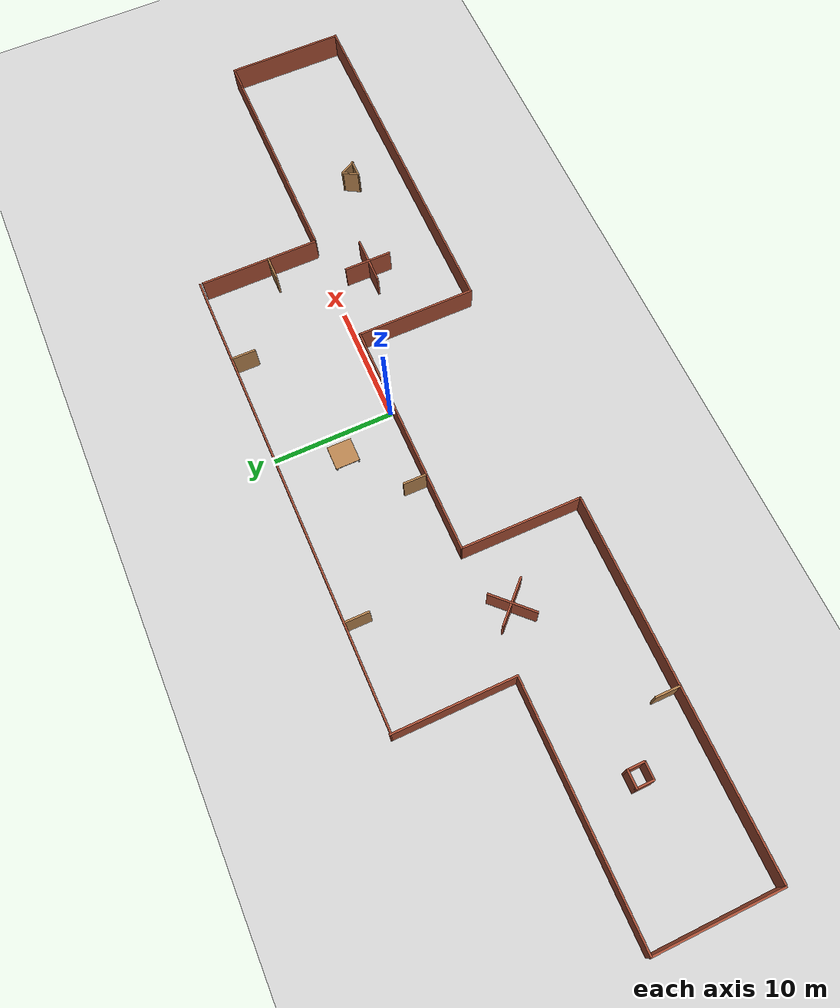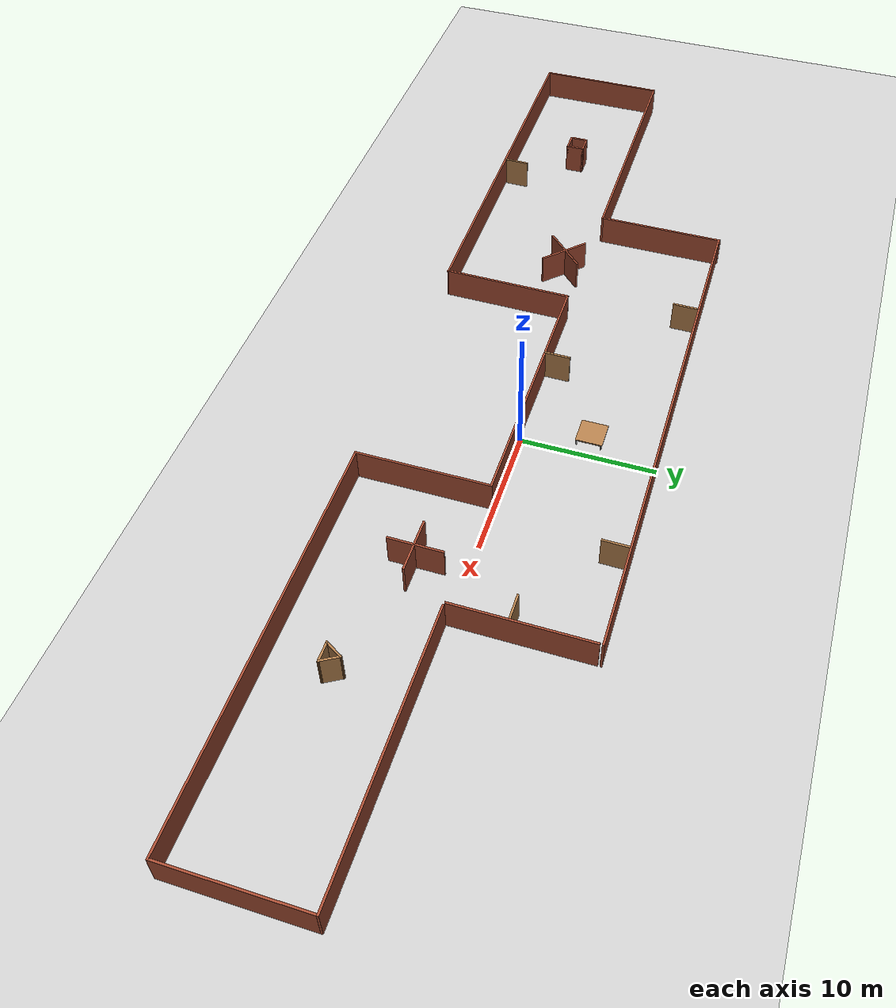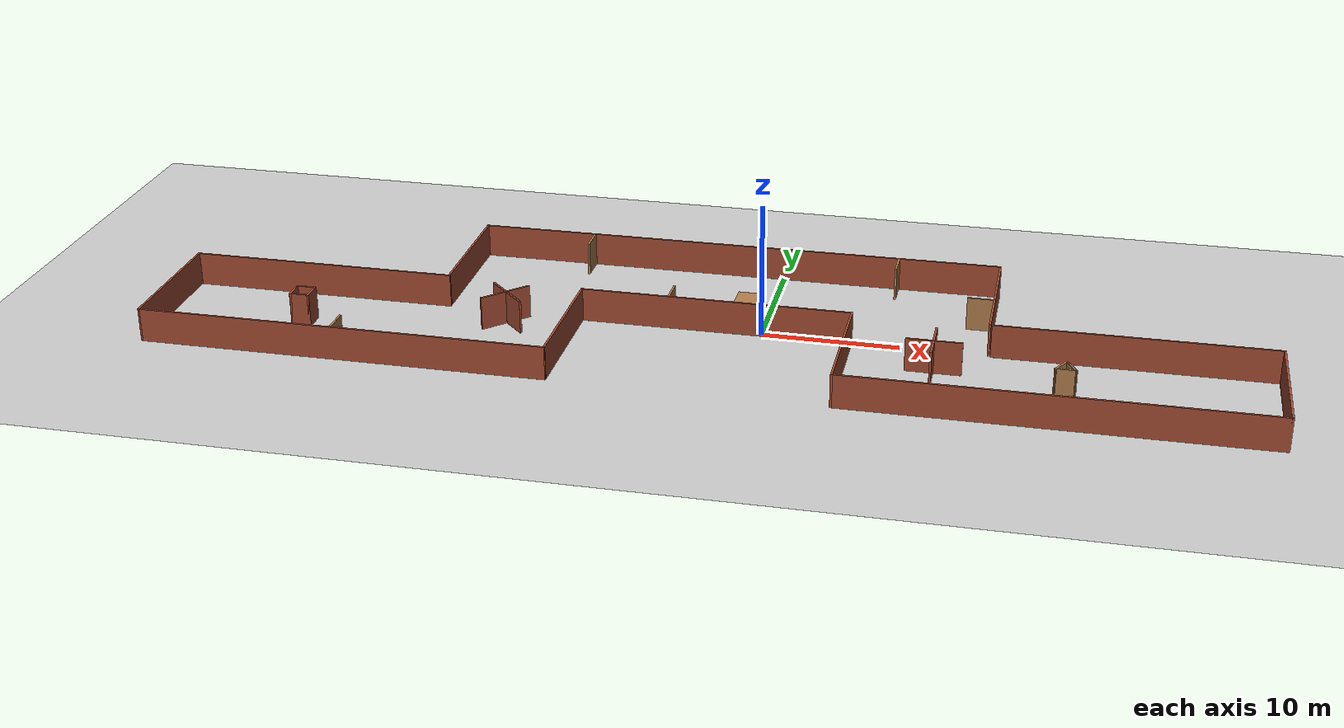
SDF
<sdf version="1.7">
 <world name="default">
  <light name="sun" type="directional">
   <pose>0 0 10 0 -0 0</pose>
   <diffuse>0.8 0.8 0.8 1</diffuse>
   <specular>0.2 0.2 0.2 1</specular>
   <attenuation>
    <range>1000</range>
    <constant>0.9</constant>
    <linear>0.01</linear>
    <quadratic>0.001</quadratic>
   </attenuation>
   <direction>-0.5 0.1 -0.9</direction>
   <spot><inner_angle>0</inner_angle><outer_angle>0</outer_angle><falloff>0</falloff></spot>
  </light>
  <model name="ground_plane">
   <static>1</static>
   <link name="link">
    <collision name="collision">
     <geometry><plane><normal>0 0 1</normal><size>100 100</size></plane></geometry>
     <surface>
      <contact><collide_bitmask>65535</collide_bitmask></contact>
      <friction><ode><mu>100</mu><mu2>50</mu2></ode></friction>
     </surface>
    </collision>
    <visual name="visual">
     <cast_shadows>0</cast_shadows>
     <geometry><plane><normal>0 0 1</normal><size>100 100</size></plane></geometry>
     <material>
      <script><uri>file://media/materials/scripts/gazebo.material</uri><name>Gazebo/Grey</name></script>
     </material>
    </visual>
   </link>
  </model>
  <gravity>0 0 -9.8</gravity>
  <magnetic_field>6e-06 2.3e-05 -4.2e-05</magnetic_field>
  <atmosphere type="adiabatic"/>
  <physics type="ode">
   <max_step_size>0.001</max_step_size>
   <real_time_factor>1</real_time_factor>
   <real_time_update_rate>1000</real_time_update_rate>
  </physics>
  <scene><ambient>0.4 0.4 0.4 1</ambient><background>0.7 0.7 0.7 1</background><shadows>1</shadows></scene>
  <spherical_coordinates>
   <surface_model>EARTH_WGS84</surface_model>
   <latitude_deg>0</latitude_deg>
   <longitude_deg>0</longitude_deg>
   <elevation>0</elevation>
   <heading_deg>0</heading_deg>
  </spherical_coordinates>
  <model name="long_room_1">
   <link name="Wall_40">
    <pose>-24.8182 -16.4485 0 0 -0 0</pose>
    <inertial>
     <mass>1</mass>
     <inertia><ixx>1</ixx><ixy>0</ixy><ixz>0</ixz><iyy>1</iyy><iyz>0</iyz><izz>1</izz></inertia>
    </inertial>
    <visual name="Wall_40_Visual">
     <pose>0 0 1.25 0 -0 0</pose>
     <geometry><box><size>30.014 0.15 2.5</size></box></geometry>
     <material>
      <script><uri>file://media/materials/scripts/gazebo.material</uri><name>Gazebo/Bricks</name></script>
      <ambient>1 1 1 1</ambient>
      <shader type="pixel"><normal_map>__default__</normal_map></shader>
      <diffuse>1 1 1 1</diffuse>
      <specular>0.2 0.2 0.2 1</specular>
      <emissive>0 0 0 1</emissive>
     </material>
     <meta><layer>0</layer></meta>
    </visual>
    <collision name="Wall_40_Collision">
     <pose>0 0 1.25 0 -0 0</pose>
     <geometry><box><size>30.014 0.15 2.5</size></box></geometry>
     <surface>
      <friction>
       <ode><mu>1</mu><mu2>1</mu2><fdir1>0 0 0</fdir1><slip1>0</slip1><slip2>0</slip2></ode>
       <torsional>
        <coefficient>1</coefficient>
        <patch_radius>0</patch_radius>
        <surface_radius>0</surface_radius>
        <use_patch_radius>1</use_patch_radius>
        <ode><slip>0</slip></ode>
       </torsional>
      </friction>
      <bounce><restitution_coefficient>0</restitution_coefficient><threshold>1e+06</threshold></bounce>
      <contact>
       <collide_without_contact>0</collide_without_contact>
       <collide_without_contact_bitmask>1</collide_without_contact_bitmask>
       <collide_bitmask>1</collide_bitmask>
       <ode>
        <soft_cfm>0</soft_cfm>
        <soft_erp>0.2</soft_erp>
        <kp>1e+13</kp>
        <kd>1</kd>
        <max_vel>0.01</max_vel>
        <min_depth>0</min_depth>
       </ode>
       <bullet>
        <split_impulse>1</split_impulse>
        <split_impulse_penetration_threshold>-0.01</split_impulse_penetration_threshold>
        <soft_cfm>0</soft_cfm>
        <soft_erp>0.2</soft_erp>
        <kp>1e+13</kp>
        <kd>1</kd>
       </bullet>
      </contact>
     </surface>
    </collision>
   </link>
   <link name="Wall_43">
    <pose>-9.84589 -11.5235 0 0 -0 1.56262</pose>
    <inertial>
     <mass>1</mass>
     <inertia><ixx>1</ixx><ixy>0</ixy><ixz>0</ixz><iyy>1</iyy><iyz>0</iyz><izz>1</izz></inertia>
    </inertial>
    <visual name="Wall_43_Visual">
     <pose>0 0 1.25 0 -0 0</pose>
     <geometry><box><size>10.0003 0.15 2.5</size></box></geometry>
     <material>
      <script><uri>file://media/materials/scripts/gazebo.material</uri><name>Gazebo/Bricks</name></script>
      <ambient>1 1 1 1</ambient>
      <shader type="pixel"><normal_map>__default__</normal_map></shader>
      <diffuse>1 1 1 1</diffuse>
      <specular>0.2 0.2 0.2 1</specular>
      <emissive>0 0 0 1</emissive>
     </material>
     <meta><layer>0</layer></meta>
    </visual>
    <collision name="Wall_43_Collision">
     <pose>0 0 1.25 0 -0 0</pose>
     <geometry><box><size>10.0003 0.15 2.5</size></box></geometry>
     <surface>
      <friction>
       <ode><mu>1</mu><mu2>1</mu2><fdir1>0 0 0</fdir1><slip1>0</slip1><slip2>0</slip2></ode>
       <torsional>
        <coefficient>1</coefficient>
        <patch_radius>0</patch_radius>
        <surface_radius>0</surface_radius>
        <use_patch_radius>1</use_patch_radius>
        <ode><slip>0</slip></ode>
       </torsional>
      </friction>
      <bounce><restitution_coefficient>0</restitution_coefficient><threshold>1e+06</threshold></bounce>
      <contact>
       <collide_without_contact>0</collide_without_contact>
       <collide_without_contact_bitmask>1</collide_without_contact_bitmask>
       <collide_bitmask>1</collide_bitmask>
       <ode>
        <soft_cfm>0</soft_cfm>
        <soft_erp>0.2</soft_erp>
        <kp>1e+13</kp>
        <kd>1</kd>
        <max_vel>0.01</max_vel>
        <min_depth>0</min_depth>
       </ode>
       <bullet>
        <split_impulse>1</split_impulse>
        <split_impulse_penetration_threshold>-0.01</split_impulse_penetration_threshold>
        <soft_cfm>0</soft_cfm>
        <soft_erp>0.2</soft_erp>
        <kp>1e+13</kp>
        <kd>1</kd>
       </bullet>
      </contact>
     </surface>
    </collision>
   </link>
   <link name="Wall_45">
    <pose>0.119401 -6.59846 0 0 -0 0</pose>
    <inertial>
     <mass>1</mass>
     <inertia><ixx>1</ixx><ixy>0</ixy><ixz>0</ixz><iyy>1</iyy><iyz>0</iyz><izz>1</izz></inertia>
    </inertial>
    <visual name="Wall_45_Visual">
     <pose>0 0 1.25 0 -0 0</pose>
     <geometry><box><size>20 0.15 2.5</size></box></geometry>
     <material>
      <script><uri>file://media/materials/scripts/gazebo.material</uri><name>Gazebo/Bricks</name></script>
      <ambient>1 1 1 1</ambient>
      <shader type="pixel"><normal_map>__default__</normal_map></shader>
      <diffuse>1 1 1 1</diffuse>
      <specular>0.2 0.2 0.2 1</specular>
      <emissive>0 0 0 1</emissive>
     </material>
     <meta><layer>0</layer></meta>
    </visual>
    <collision name="Wall_45_Collision">
     <pose>0 0 1.25 0 -0 0</pose>
     <geometry><box><size>20 0.15 2.5</size></box></geometry>
     <surface>
      <friction>
       <ode><mu>1</mu><mu2>1</mu2><fdir1>0 0 0</fdir1><slip1>0</slip1><slip2>0</slip2></ode>
       <torsional>
        <coefficient>1</coefficient>
        <patch_radius>0</patch_radius>
        <surface_radius>0</surface_radius>
        <use_patch_radius>1</use_patch_radius>
        <ode><slip>0</slip></ode>
       </torsional>
      </friction>
      <bounce><restitution_coefficient>0</restitution_coefficient><threshold>1e+06</threshold></bounce>
      <contact>
       <collide_without_contact>0</collide_without_contact>
       <collide_without_contact_bitmask>1</collide_without_contact_bitmask>
       <collide_bitmask>1</collide_bitmask>
       <ode>
        <soft_cfm>0</soft_cfm>
        <soft_erp>0.2</soft_erp>
        <kp>1e+13</kp>
        <kd>1</kd>
        <max_vel>0.01</max_vel>
        <min_depth>0</min_depth>
       </ode>
       <bullet>
        <split_impulse>1</split_impulse>
        <split_impulse_penetration_threshold>-0.01</split_impulse_penetration_threshold>
        <soft_cfm>0</soft_cfm>
        <soft_erp>0.2</soft_erp>
        <kp>1e+13</kp>
        <kd>1</kd>
       </bullet>
      </contact>
     </surface>
    </collision>
   </link>
   <link name="Wall_47">
    <pose>10.0444 -11.5235 0 0 0 -1.5708</pose>
    <inertial>
     <mass>1</mass>
     <inertia><ixx>1</ixx><ixy>0</ixy><ixz>0</ixz><iyy>1</iyy><iyz>0</iyz><izz>1</izz></inertia>
    </inertial>
    <visual name="Wall_47_Visual">
     <pose>0 0 1.25 0 -0 0</pose>
     <geometry><box><size>10 0.15 2.5</size></box></geometry>
     <material>
      <script><uri>file://media/materials/scripts/gazebo.material</uri><name>Gazebo/Bricks</name></script>
      <ambient>1 1 1 1</ambient>
      <shader type="pixel"><normal_map>__default__</normal_map></shader>
      <diffuse>1 1 1 1</diffuse>
      <specular>0.2 0.2 0.2 1</specular>
      <emissive>0 0 0 1</emissive>
     </material>
     <meta><layer>0</layer></meta>
    </visual>
    <collision name="Wall_47_Collision">
     <pose>0 0 1.25 0 -0 0</pose>
     <geometry><box><size>10 0.15 2.5</size></box></geometry>
     <surface>
      <friction>
       <ode><mu>1</mu><mu2>1</mu2><fdir1>0 0 0</fdir1><slip1>0</slip1><slip2>0</slip2></ode>
       <torsional>
        <coefficient>1</coefficient>
        <patch_radius>0</patch_radius>
        <surface_radius>0</surface_radius>
        <use_patch_radius>1</use_patch_radius>
        <ode><slip>0</slip></ode>
       </torsional>
      </friction>
      <bounce><restitution_coefficient>0</restitution_coefficient><threshold>1e+06</threshold></bounce>
      <contact>
       <collide_without_contact>0</collide_without_contact>
       <collide_without_contact_bitmask>1</collide_without_contact_bitmask>
       <collide_bitmask>1</collide_bitmask>
       <ode>
        <soft_cfm>0</soft_cfm>
        <soft_erp>0.2</soft_erp>
        <kp>1e+13</kp>
        <kd>1</kd>
        <max_vel>0.01</max_vel>
        <min_depth>0</min_depth>
       </ode>
       <bullet>
        <split_impulse>1</split_impulse>
        <split_impulse_penetration_threshold>-0.01</split_impulse_penetration_threshold>
        <soft_cfm>0</soft_cfm>
        <soft_erp>0.2</soft_erp>
        <kp>1e+13</kp>
        <kd>1</kd>
       </bullet>
      </contact>
     </surface>
    </collision>
   </link>
   <link name="Wall_49">
    <pose>24.9694 -16.4485 0 0 -0 0</pose>
    <inertial>
     <mass>1</mass>
     <inertia><ixx>1</ixx><ixy>0</ixy><ixz>0</ixz><iyy>1</iyy><iyz>0</iyz><izz>1</izz></inertia>
    </inertial>
    <visual name="Wall_49_Visual">
     <pose>0 0 1.25 0 -0 0</pose>
     <geometry><box><size>30 0.15 2.5</size></box></geometry>
     <material>
      <script><uri>file://media/materials/scripts/gazebo.material</uri><name>Gazebo/Bricks</name></script>
      <ambient>1 1 1 1</ambient>
      <shader type="pixel"><normal_map>__default__</normal_map></shader>
      <diffuse>1 1 1 1</diffuse>
      <specular>0.2 0.2 0.2 1</specular>
      <emissive>0 0 0 1</emissive>
     </material>
     <meta><layer>0</layer></meta>
    </visual>
    <collision name="Wall_49_Collision">
     <pose>0 0 1.25 0 -0 0</pose>
     <geometry><box><size>30 0.15 2.5</size></box></geometry>
     <surface>
      <friction>
       <ode><mu>1</mu><mu2>1</mu2><fdir1>0 0 0</fdir1><slip1>0</slip1><slip2>0</slip2></ode>
       <torsional>
        <coefficient>1</coefficient>
        <patch_radius>0</patch_radius>
        <surface_radius>0</surface_radius>
        <use_patch_radius>1</use_patch_radius>
        <ode><slip>0</slip></ode>
       </torsional>
      </friction>
      <bounce><restitution_coefficient>0</restitution_coefficient><threshold>1e+06</threshold></bounce>
      <contact>
       <collide_without_contact>0</collide_without_contact>
       <collide_without_contact_bitmask>1</collide_without_contact_bitmask>
       <collide_bitmask>1</collide_bitmask>
       <ode>
        <soft_cfm>0</soft_cfm>
        <soft_erp>0.2</soft_erp>
        <kp>1e+13</kp>
        <kd>1</kd>
        <max_vel>0.01</max_vel>
        <min_depth>0</min_depth>
       </ode>
       <bullet>
        <split_impulse>1</split_impulse>
        <split_impulse_penetration_threshold>-0.01</split_impulse_penetration_threshold>
        <soft_cfm>0</soft_cfm>
        <soft_erp>0.2</soft_erp>
        <kp>1e+13</kp>
        <kd>1</kd>
       </bullet>
      </contact>
     </surface>
    </collision>
   </link>
   <link name="Wall_51">
    <pose>39.8944 -11.5235 0 0 -0 1.5708</pose>
    <inertial>
     <mass>1</mass>
     <inertia><ixx>1</ixx><ixy>0</ixy><ixz>0</ixz><iyy>1</iyy><iyz>0</iyz><izz>1</izz></inertia>
    </inertial>
    <visual name="Wall_51_Visual">
     <pose>0 0 1.25 0 -0 0</pose>
     <geometry><box><size>10 0.15 2.5</size></box></geometry>
     <material>
      <script><uri>file://media/materials/scripts/gazebo.material</uri><name>Gazebo/Bricks</name></script>
      <ambient>1 1 1 1</ambient>
      <shader type="pixel"><normal_map>__default__</normal_map></shader>
      <diffuse>1 1 1 1</diffuse>
      <specular>0.2 0.2 0.2 1</specular>
      <emissive>0 0 0 1</emissive>
     </material>
     <meta><layer>0</layer></meta>
    </visual>
    <collision name="Wall_51_Collision">
     <pose>0 0 1.25 0 -0 0</pose>
     <geometry><box><size>10 0.15 2.5</size></box></geometry>
     <surface>
      <friction>
       <ode><mu>1</mu><mu2>1</mu2><fdir1>0 0 0</fdir1><slip1>0</slip1><slip2>0</slip2></ode>
       <torsional>
        <coefficient>1</coefficient>
        <patch_radius>0</patch_radius>
        <surface_radius>0</surface_radius>
        <use_patch_radius>1</use_patch_radius>
        <ode><slip>0</slip></ode>
       </torsional>
      </friction>
      <bounce><restitution_coefficient>0</restitution_coefficient><threshold>1e+06</threshold></bounce>
      <contact>
       <collide_without_contact>0</collide_without_contact>
       <collide_without_contact_bitmask>1</collide_without_contact_bitmask>
       <collide_bitmask>1</collide_bitmask>
       <ode>
        <soft_cfm>0</soft_cfm>
        <soft_erp>0.2</soft_erp>
        <kp>1e+13</kp>
        <kd>1</kd>
        <max_vel>0.01</max_vel>
        <min_depth>0</min_depth>
       </ode>
       <bullet>
        <split_impulse>1</split_impulse>
        <split_impulse_penetration_threshold>-0.01</split_impulse_penetration_threshold>
        <soft_cfm>0</soft_cfm>
        <soft_erp>0.2</soft_erp>
        <kp>1e+13</kp>
        <kd>1</kd>
       </bullet>
      </contact>
     </surface>
    </collision>
   </link>
   <link name="Wall_53">
    <pose>29.9694 -6.59846 0 0 -0 3.14159</pose>
    <inertial>
     <mass>1</mass>
     <inertia><ixx>1</ixx><ixy>0</ixy><ixz>0</ixz><iyy>1</iyy><iyz>0</iyz><izz>1</izz></inertia>
    </inertial>
    <visual name="Wall_53_Visual">
     <pose>0 0 1.25 0 -0 0</pose>
     <geometry><box><size>20 0.15 2.5</size></box></geometry>
     <material>
      <script><uri>file://media/materials/scripts/gazebo.material</uri><name>Gazebo/Bricks</name></script>
      <ambient>1 1 1 1</ambient>
      <shader type="pixel"><normal_map>__default__</normal_map></shader>
      <diffuse>1 1 1 1</diffuse>
      <specular>0.2 0.2 0.2 1</specular>
      <emissive>0 0 0 1</emissive>
     </material>
     <meta><layer>0</layer></meta>
    </visual>
    <collision name="Wall_53_Collision">
     <pose>0 0 1.25 0 -0 0</pose>
     <geometry><box><size>20 0.15 2.5</size></box></geometry>
     <surface>
      <friction>
       <ode><mu>1</mu><mu2>1</mu2><fdir1>0 0 0</fdir1><slip1>0</slip1><slip2>0</slip2></ode>
       <torsional>
        <coefficient>1</coefficient>
        <patch_radius>0</patch_radius>
        <surface_radius>0</surface_radius>
        <use_patch_radius>1</use_patch_radius>
        <ode><slip>0</slip></ode>
       </torsional>
      </friction>
      <bounce><restitution_coefficient>0</restitution_coefficient><threshold>1e+06</threshold></bounce>
      <contact>
       <collide_without_contact>0</collide_without_contact>
       <collide_without_contact_bitmask>1</collide_without_contact_bitmask>
       <collide_bitmask>1</collide_bitmask>
       <ode>
        <soft_cfm>0</soft_cfm>
        <soft_erp>0.2</soft_erp>
        <kp>1e+13</kp>
        <kd>1</kd>
        <max_vel>0.01</max_vel>
        <min_depth>0</min_depth>
       </ode>
       <bullet>
        <split_impulse>1</split_impulse>
        <split_impulse_penetration_threshold>-0.01</split_impulse_penetration_threshold>
        <soft_cfm>0</soft_cfm>
        <soft_erp>0.2</soft_erp>
        <kp>1e+13</kp>
        <kd>1</kd>
       </bullet>
      </contact>
     </surface>
    </collision>
   </link>
   <link name="Wall_56">
    <pose>19.8148 -1.56674 0 0 -0 1.5708</pose>
    <inertial>
     <mass>1</mass>
     <inertia><ixx>1</ixx><ixy>0</ixy><ixz>0</ixz><iyy>1</iyy><iyz>0</iyz><izz>1</izz></inertia>
    </inertial>
    <visual name="Wall_56_Visual">
     <pose>0 0 1.25 0 -0 0</pose>
     <geometry><box><size>10 0.15 2.5</size></box></geometry>
     <material>
      <script><uri>file://media/materials/scripts/gazebo.material</uri><name>Gazebo/Bricks</name></script>
      <ambient>1 1 1 1</ambient>
      <shader type="pixel"><normal_map>__default__</normal_map></shader>
      <diffuse>1 1 1 1</diffuse>
      <specular>0.2 0.2 0.2 1</specular>
      <emissive>0 0 0 1</emissive>
     </material>
     <meta><layer>0</layer></meta>
    </visual>
    <collision name="Wall_56_Collision">
     <pose>0 0 1.25 0 -0 0</pose>
     <geometry><box><size>10 0.15 2.5</size></box></geometry>
     <surface>
      <friction>
       <ode><mu>1</mu><mu2>1</mu2><fdir1>0 0 0</fdir1><slip1>0</slip1><slip2>0</slip2></ode>
       <torsional>
        <coefficient>1</coefficient>
        <patch_radius>0</patch_radius>
        <surface_radius>0</surface_radius>
        <use_patch_radius>1</use_patch_radius>
        <ode><slip>0</slip></ode>
       </torsional>
      </friction>
      <bounce><restitution_coefficient>0</restitution_coefficient><threshold>1e+06</threshold></bounce>
      <contact>
       <collide_without_contact>0</collide_without_contact>
       <collide_without_contact_bitmask>1</collide_without_contact_bitmask>
       <collide_bitmask>1</collide_bitmask>
       <ode>
        <soft_cfm>0</soft_cfm>
        <soft_erp>0.2</soft_erp>
        <kp>1e+13</kp>
        <kd>1</kd>
        <max_vel>0.01</max_vel>
        <min_depth>0</min_depth>
       </ode>
       <bullet>
        <split_impulse>1</split_impulse>
        <split_impulse_penetration_threshold>-0.01</split_impulse_penetration_threshold>
        <soft_cfm>0</soft_cfm>
        <soft_erp>0.2</soft_erp>
        <kp>1e+13</kp>
        <kd>1</kd>
       </bullet>
      </contact>
     </surface>
    </collision>
   </link>
   <link name="Wall_58">
    <pose>-0.1194 3.54042 0 0 0 -3.1369</pose>
    <inertial>
     <mass>1</mass>
     <inertia><ixx>1</ixx><ixy>0</ixy><ixz>0</ixz><iyy>1</iyy><iyz>0</iyz><izz>1</izz></inertia>
    </inertial>
    <visual name="Wall_58_Visual">
     <pose>0 0 1.25 0 -0 0</pose>
     <geometry><box><size>40 0.15 2.5</size></box></geometry>
     <material>
      <script><uri>file://media/materials/scripts/gazebo.material</uri><name>Gazebo/Bricks</name></script>
      <ambient>1 1 1 1</ambient>
      <shader type="pixel"><normal_map>__default__</normal_map></shader>
      <diffuse>1 1 1 1</diffuse>
      <specular>0.2 0.2 0.2 1</specular>
      <emissive>0 0 0 1</emissive>
     </material>
     <meta><layer>0</layer></meta>
    </visual>
    <collision name="Wall_58_Collision">
     <pose>0 0 1.25 0 -0 0</pose>
     <geometry><box><size>40 0.15 2.5</size></box></geometry>
     <surface>
      <friction>
       <ode><mu>1</mu><mu2>1</mu2><fdir1>0 0 0</fdir1><slip1>0</slip1><slip2>0</slip2></ode>
       <torsional>
        <coefficient>1</coefficient>
        <patch_radius>0</patch_radius>
        <surface_radius>0</surface_radius>
        <use_patch_radius>1</use_patch_radius>
        <ode><slip>0</slip></ode>
       </torsional>
      </friction>
      <bounce><restitution_coefficient>0</restitution_coefficient><threshold>1e+06</threshold></bounce>
      <contact>
       <collide_without_contact>0</collide_without_contact>
       <collide_without_contact_bitmask>1</collide_without_contact_bitmask>
       <collide_bitmask>1</collide_bitmask>
       <ode>
        <soft_cfm>0</soft_cfm>
        <soft_erp>0.2</soft_erp>
        <kp>1e+13</kp>
        <kd>1</kd>
        <max_vel>0.01</max_vel>
        <min_depth>0</min_depth>
       </ode>
       <bullet>
        <split_impulse>1</split_impulse>
        <split_impulse_penetration_threshold>-0.01</split_impulse_penetration_threshold>
        <soft_cfm>0</soft_cfm>
        <soft_erp>0.2</soft_erp>
        <kp>1e+13</kp>
        <kd>1</kd>
       </bullet>
      </contact>
     </surface>
    </collision>
   </link>
   <link name="Wall_61">
    <pose>-20.0444 -1.38458 0 0 0 -1.5708</pose>
    <inertial>
     <mass>1</mass>
     <inertia><ixx>1</ixx><ixy>0</ixy><ixz>0</ixz><iyy>1</iyy><iyz>0</iyz><izz>1</izz></inertia>
    </inertial>
    <visual name="Wall_61_Visual">
     <pose>0 0 1.25 0 -0 0</pose>
     <geometry><box><size>10 0.15 2.5</size></box></geometry>
     <material>
      <script><uri>file://media/materials/scripts/gazebo.material</uri><name>Gazebo/Bricks</name></script>
      <ambient>1 1 1 1</ambient>
      <shader type="pixel"><normal_map>__default__</normal_map></shader>
      <diffuse>1 1 1 1</diffuse>
      <specular>0.2 0.2 0.2 1</specular>
      <emissive>0 0 0 1</emissive>
     </material>
     <meta><layer>0</layer></meta>
    </visual>
    <collision name="Wall_61_Collision">
     <pose>0 0 1.25 0 -0 0</pose>
     <geometry><box><size>10 0.15 2.5</size></box></geometry>
     <surface>
      <friction>
       <ode><mu>1</mu><mu2>1</mu2><fdir1>0 0 0</fdir1><slip1>0</slip1><slip2>0</slip2></ode>
       <torsional>
        <coefficient>1</coefficient>
        <patch_radius>0</patch_radius>
        <surface_radius>0</surface_radius>
        <use_patch_radius>1</use_patch_radius>
        <ode><slip>0</slip></ode>
       </torsional>
      </friction>
      <bounce><restitution_coefficient>0</restitution_coefficient><threshold>1e+06</threshold></bounce>
      <contact>
       <collide_without_contact>0</collide_without_contact>
       <collide_without_contact_bitmask>1</collide_without_contact_bitmask>
       <collide_bitmask>1</collide_bitmask>
       <ode>
        <soft_cfm>0</soft_cfm>
        <soft_erp>0.2</soft_erp>
        <kp>1e+13</kp>
        <kd>1</kd>
        <max_vel>0.01</max_vel>
        <min_depth>0</min_depth>
       </ode>
       <bullet>
        <split_impulse>1</split_impulse>
        <split_impulse_penetration_threshold>-0.01</split_impulse_penetration_threshold>
        <soft_cfm>0</soft_cfm>
        <soft_erp>0.2</soft_erp>
        <kp>1e+13</kp>
        <kd>1</kd>
       </bullet>
      </contact>
     </surface>
    </collision>
   </link>
   <link name="Wall_63">
    <pose>-29.9694 -6.30958 0 0 -0 3.14159</pose>
    <inertial>
     <mass>1</mass>
     <inertia><ixx>1</ixx><ixy>0</ixy><ixz>0</ixz><iyy>1</iyy><iyz>0</iyz><izz>1</izz></inertia>
    </inertial>
    <visual name="Wall_63_Visual">
     <pose>0 0 1.25 0 -0 0</pose>
     <geometry><box><size>20 0.15 2.5</size></box></geometry>
     <material>
      <script><uri>file://media/materials/scripts/gazebo.material</uri><name>Gazebo/Bricks</name></script>
      <ambient>1 1 1 1</ambient>
      <shader type="pixel"><normal_map>__default__</normal_map></shader>
      <diffuse>1 1 1 1</diffuse>
      <specular>0.2 0.2 0.2 1</specular>
      <emissive>0 0 0 1</emissive>
     </material>
     <meta><layer>0</layer></meta>
    </visual>
    <collision name="Wall_63_Collision">
     <pose>0 0 1.25 0 -0 0</pose>
     <geometry><box><size>20 0.15 2.5</size></box></geometry>
     <surface>
      <friction>
       <ode><mu>1</mu><mu2>1</mu2><fdir1>0 0 0</fdir1><slip1>0</slip1><slip2>0</slip2></ode>
       <torsional>
        <coefficient>1</coefficient>
        <patch_radius>0</patch_radius>
        <surface_radius>0</surface_radius>
        <use_patch_radius>1</use_patch_radius>
        <ode><slip>0</slip></ode>
       </torsional>
      </friction>
      <bounce><restitution_coefficient>0</restitution_coefficient><threshold>1e+06</threshold></bounce>
      <contact>
       <collide_without_contact>0</collide_without_contact>
       <collide_without_contact_bitmask>1</collide_without_contact_bitmask>
       <collide_bitmask>1</collide_bitmask>
       <ode>
        <soft_cfm>0</soft_cfm>
        <soft_erp>0.2</soft_erp>
        <kp>1e+13</kp>
        <kd>1</kd>
        <max_vel>0.01</max_vel>
        <min_depth>0</min_depth>
       </ode>
       <bullet>
        <split_impulse>1</split_impulse>
        <split_impulse_penetration_threshold>-0.01</split_impulse_penetration_threshold>
        <soft_cfm>0</soft_cfm>
        <soft_erp>0.2</soft_erp>
        <kp>1e+13</kp>
        <kd>1</kd>
       </bullet>
      </contact>
     </surface>
    </collision>
   </link>
   <link name="Wall_65">
    <pose>-39.8944 -11.3596 0 0 0 -1.5708</pose>
    <inertial>
     <mass>1</mass>
     <inertia><ixx>1</ixx><ixy>0</ixy><ixz>0</ixz><iyy>1</iyy><iyz>0</iyz><izz>1</izz></inertia>
    </inertial>
    <visual name="Wall_65_Visual">
     <pose>0 0 1.25 0 -0 0</pose>
     <geometry><box><size>10.25 0.15 2.5</size></box></geometry>
     <material>
      <script><uri>file://media/materials/scripts/gazebo.material</uri><name>Gazebo/Bricks</name></script>
      <ambient>1 1 1 1</ambient>
      <shader type="pixel"><normal_map>__default__</normal_map></shader>
      <diffuse>1 1 1 1</diffuse>
      <specular>0.2 0.2 0.2 1</specular>
      <emissive>0 0 0 1</emissive>
     </material>
     <meta><layer>0</layer></meta>
    </visual>
    <collision name="Wall_65_Collision">
     <pose>0 0 1.25 0 -0 0</pose>
     <geometry><box><size>10.25 0.15 2.5</size></box></geometry>
     <surface>
      <friction>
       <ode><mu>1</mu><mu2>1</mu2><fdir1>0 0 0</fdir1><slip1>0</slip1><slip2>0</slip2></ode>
       <torsional>
        <coefficient>1</coefficient>
        <patch_radius>0</patch_radius>
        <surface_radius>0</surface_radius>
        <use_patch_radius>1</use_patch_radius>
        <ode><slip>0</slip></ode>
       </torsional>
      </friction>
      <bounce><restitution_coefficient>0</restitution_coefficient><threshold>1e+06</threshold></bounce>
      <contact>
       <collide_without_contact>0</collide_without_contact>
       <collide_without_contact_bitmask>1</collide_without_contact_bitmask>
       <collide_bitmask>1</collide_bitmask>
       <ode>
        <soft_cfm>0</soft_cfm>
        <soft_erp>0.2</soft_erp>
        <kp>1e+13</kp>
        <kd>1</kd>
        <max_vel>0.01</max_vel>
        <min_depth>0</min_depth>
       </ode>
       <bullet>
        <split_impulse>1</split_impulse>
        <split_impulse_penetration_threshold>-0.01</split_impulse_penetration_threshold>
        <soft_cfm>0</soft_cfm>
        <soft_erp>0.2</soft_erp>
        <kp>1e+13</kp>
        <kd>1</kd>
       </bullet>
      </contact>
     </surface>
    </collision>
   </link>
   <static>1</static>
   <pose>-3.50821 6.43152 0 0 -0 0</pose>
  </model>
  <model name="table">
   <link name="link_0">
    <inertial>
     <mass>1</mass>
     <inertia>
      <ixx>0.166667</ixx>
      <ixy>0</ixy>
      <ixz>0</ixz>
      <iyy>0.166667</iyy>
      <iyz>0</iyz>
      <izz>0.166667</izz>
     </inertia>
    </inertial>
    <pose>-0.00175 0.015266 0.2 0 -0 0</pose>
    <visual name="visual">
     <geometry><box><size>2 2 0.1</size></box></geometry>
     <material>
      <lighting>1</lighting>
      <script><uri>file://media/materials/scripts/gazebo.material</uri><name>Gazebo/Wood</name></script>
      <shader type="pixel"><normal_map>__default__</normal_map></shader>
      <ambient>0.3 0.3 0.3 1</ambient>
      <diffuse>0.7 0.7 0.7 1</diffuse>
      <specular>0.01 0.01 0.01 1</specular>
      <emissive>0 0 0 1</emissive>
     </material>
    </visual>
    <collision name="collision">
     <geometry><box><size>2 2 0.1</size></box></geometry>
     <surface>
      <friction>
       <ode><mu>1</mu><mu2>1</mu2><fdir1>0 0 0</fdir1><slip1>0</slip1><slip2>0</slip2></ode>
       <torsional>
        <coefficient>1</coefficient>
        <patch_radius>0</patch_radius>
        <surface_radius>0</surface_radius>
        <use_patch_radius>1</use_patch_radius>
        <ode><slip>0</slip></ode>
       </torsional>
      </friction>
      <bounce><restitution_coefficient>0</restitution_coefficient><threshold>1e+06</threshold></bounce>
      <contact>
       <collide_without_contact>0</collide_without_contact>
       <collide_without_contact_bitmask>1</collide_without_contact_bitmask>
       <collide_bitmask>1</collide_bitmask>
       <ode>
        <soft_cfm>0</soft_cfm>
        <soft_erp>0.2</soft_erp>
        <kp>1e+13</kp>
        <kd>1</kd>
        <max_vel>0.01</max_vel>
        <min_depth>0</min_depth>
       </ode>
       <bullet>
        <split_impulse>1</split_impulse>
        <split_impulse_penetration_threshold>-0.01</split_impulse_penetration_threshold>
        <soft_cfm>0</soft_cfm>
        <soft_erp>0.2</soft_erp>
        <kp>1e+13</kp>
        <kd>1</kd>
       </bullet>
      </contact>
     </surface>
    </collision>
   </link>
   <link name="link_1">
    <inertial>
     <mass>1</mass>
     <inertia>
      <ixx>0.166667</ixx>
      <ixy>0</ixy>
      <ixz>0</ixz>
      <iyy>0.166667</iyy>
      <iyz>0</iyz>
      <izz>0.166667</izz>
     </inertia>
    </inertial>
    <pose>0.900437 0.896183 -0.05 0 -0 0</pose>
    <visual name="visual">
     <geometry><box><size>0.1 0.1 0.5</size></box></geometry>
     <material>
      <lighting>1</lighting>
      <script><uri>file://media/materials/scripts/gazebo.material</uri><name>Gazebo/Grey</name></script>
      <shader type="pixel"><normal_map>__default__</normal_map></shader>
      <ambient>0.3 0.3 0.3 1</ambient>
      <diffuse>0.7 0.7 0.7 1</diffuse>
      <specular>0.01 0.01 0.01 1</specular>
      <emissive>0 0 0 1</emissive>
     </material>
    </visual>
    <collision name="collision">
     <geometry><box><size>0.1 0.1 0.5</size></box></geometry>
     <surface>
      <friction>
       <ode><mu>1</mu><mu2>1</mu2><fdir1>0 0 0</fdir1><slip1>0</slip1><slip2>0</slip2></ode>
       <torsional>
        <coefficient>1</coefficient>
        <patch_radius>0</patch_radius>
        <surface_radius>0</surface_radius>
        <use_patch_radius>1</use_patch_radius>
        <ode><slip>0</slip></ode>
       </torsional>
      </friction>
      <bounce><restitution_coefficient>0</restitution_coefficient><threshold>1e+06</threshold></bounce>
      <contact>
       <collide_without_contact>0</collide_without_contact>
       <collide_without_contact_bitmask>1</collide_without_contact_bitmask>
       <collide_bitmask>1</collide_bitmask>
       <ode>
        <soft_cfm>0</soft_cfm>
        <soft_erp>0.2</soft_erp>
        <kp>1e+13</kp>
        <kd>1</kd>
        <max_vel>0.01</max_vel>
        <min_depth>0</min_depth>
       </ode>
       <bullet>
        <split_impulse>1</split_impulse>
        <split_impulse_penetration_threshold>-0.01</split_impulse_penetration_threshold>
        <soft_cfm>0</soft_cfm>
        <soft_erp>0.2</soft_erp>
        <kp>1e+13</kp>
        <kd>1</kd>
       </bullet>
      </contact>
     </surface>
    </collision>
   </link>
   <link name="link_1_clone">
    <inertial>
     <mass>1</mass>
     <inertia>
      <ixx>0.166667</ixx>
      <ixy>0</ixy>
      <ixz>0</ixz>
      <iyy>0.166667</iyy>
      <iyz>0</iyz>
      <izz>0.166667</izz>
     </inertia>
    </inertial>
    <pose>-0.899563 0.896183 -0.05 0 -0 0</pose>
    <visual name="visual">
     <geometry><box><size>0.1 0.1 0.5</size></box></geometry>
     <material>
      <lighting>1</lighting>
      <script><uri>file://media/materials/scripts/gazebo.material</uri><name>Gazebo/Grey</name></script>
      <shader type="pixel"><normal_map>__default__</normal_map></shader>
      <ambient>0.3 0.3 0.3 1</ambient>
      <diffuse>0.7 0.7 0.7 1</diffuse>
      <specular>0.01 0.01 0.01 1</specular>
      <emissive>0 0 0 1</emissive>
     </material>
    </visual>
    <collision name="collision">
     <geometry><box><size>0.1 0.1 0.5</size></box></geometry>
     <surface>
      <friction>
       <ode><mu>1</mu><mu2>1</mu2><fdir1>0 0 0</fdir1><slip1>0</slip1><slip2>0</slip2></ode>
       <torsional>
        <coefficient>1</coefficient>
        <patch_radius>0</patch_radius>
        <surface_radius>0</surface_radius>
        <use_patch_radius>1</use_patch_radius>
        <ode><slip>0</slip></ode>
       </torsional>
      </friction>
      <bounce><restitution_coefficient>0</restitution_coefficient><threshold>1e+06</threshold></bounce>
      <contact>
       <collide_without_contact>0</collide_without_contact>
       <collide_without_contact_bitmask>1</collide_without_contact_bitmask>
       <collide_bitmask>1</collide_bitmask>
       <ode>
        <soft_cfm>0</soft_cfm>
        <soft_erp>0.2</soft_erp>
        <kp>1e+13</kp>
        <kd>1</kd>
        <max_vel>0.01</max_vel>
        <min_depth>0</min_depth>
       </ode>
       <bullet>
        <split_impulse>1</split_impulse>
        <split_impulse_penetration_threshold>-0.01</split_impulse_penetration_threshold>
        <soft_cfm>0</soft_cfm>
        <soft_erp>0.2</soft_erp>
        <kp>1e+13</kp>
        <kd>1</kd>
       </bullet>
      </contact>
     </surface>
    </collision>
   </link>
   <link name="link_1_clone_clone">
    <inertial>
     <mass>1</mass>
     <inertia>
      <ixx>0.166667</ixx>
      <ixy>0</ixy>
      <ixz>0</ixz>
      <iyy>0.166667</iyy>
      <iyz>0</iyz>
      <izz>0.166667</izz>
     </inertia>
    </inertial>
    <pose>0.900437 -0.903817 -0.05 0 -0 0</pose>
    <visual name="visual">
     <geometry><box><size>0.1 0.1 0.5</size></box></geometry>
     <material>
      <lighting>1</lighting>
      <script><uri>file://media/materials/scripts/gazebo.material</uri><name>Gazebo/Grey</name></script>
      <shader type="pixel"><normal_map>__default__</normal_map></shader>
      <ambient>0.3 0.3 0.3 1</ambient>
      <diffuse>0.7 0.7 0.7 1</diffuse>
      <specular>0.01 0.01 0.01 1</specular>
      <emissive>0 0 0 1</emissive>
     </material>
    </visual>
    <collision name="collision">
     <geometry><box><size>0.1 0.1 0.5</size></box></geometry>
     <surface>
      <friction>
       <ode><mu>1</mu><mu2>1</mu2><fdir1>0 0 0</fdir1><slip1>0</slip1><slip2>0</slip2></ode>
       <torsional>
        <coefficient>1</coefficient>
        <patch_radius>0</patch_radius>
        <surface_radius>0</surface_radius>
        <use_patch_radius>1</use_patch_radius>
        <ode><slip>0</slip></ode>
       </torsional>
      </friction>
      <bounce><restitution_coefficient>0</restitution_coefficient><threshold>1e+06</threshold></bounce>
      <contact>
       <collide_without_contact>0</collide_without_contact>
       <collide_without_contact_bitmask>1</collide_without_contact_bitmask>
       <collide_bitmask>1</collide_bitmask>
       <ode>
        <soft_cfm>0</soft_cfm>
        <soft_erp>0.2</soft_erp>
        <kp>1e+13</kp>
        <kd>1</kd>
        <max_vel>0.01</max_vel>
        <min_depth>0</min_depth>
       </ode>
       <bullet>
        <split_impulse>1</split_impulse>
        <split_impulse_penetration_threshold>-0.01</split_impulse_penetration_threshold>
        <soft_cfm>0</soft_cfm>
        <soft_erp>0.2</soft_erp>
        <kp>1e+13</kp>
        <kd>1</kd>
       </bullet>
      </contact>
     </surface>
    </collision>
   </link>
   <link name="link_1_clone_clone_0">
    <inertial>
     <mass>1</mass>
     <inertia>
      <ixx>0.166667</ixx>
      <ixy>0</ixy>
      <ixz>0</ixz>
      <iyy>0.166667</iyy>
      <iyz>0</iyz>
      <izz>0.166667</izz>
     </inertia>
    </inertial>
    <pose>-0.899563 -0.903817 -0.05 0 -0 0</pose>
    <visual name="visual">
     <geometry><box><size>0.1 0.1 0.5</size></box></geometry>
     <material>
      <lighting>1</lighting>
      <script><uri>file://media/materials/scripts/gazebo.material</uri><name>Gazebo/Grey</name></script>
      <shader type="pixel"><normal_map>__default__</normal_map></shader>
      <ambient>0.3 0.3 0.3 1</ambient>
      <diffuse>0.7 0.7 0.7 1</diffuse>
      <specular>0.01 0.01 0.01 1</specular>
      <emissive>0 0 0 1</emissive>
     </material>
    </visual>
    <collision name="collision">
     <geometry><box><size>0.1 0.1 0.5</size></box></geometry>
     <surface>
      <friction>
       <ode><mu>1</mu><mu2>1</mu2><fdir1>0 0 0</fdir1><slip1>0</slip1><slip2>0</slip2></ode>
       <torsional>
        <coefficient>1</coefficient>
        <patch_radius>0</patch_radius>
        <surface_radius>0</surface_radius>
        <use_patch_radius>1</use_patch_radius>
        <ode><slip>0</slip></ode>
       </torsional>
      </friction>
      <bounce><restitution_coefficient>0</restitution_coefficient><threshold>1e+06</threshold></bounce>
      <contact>
       <collide_without_contact>0</collide_without_contact>
       <collide_without_contact_bitmask>1</collide_without_contact_bitmask>
       <collide_bitmask>1</collide_bitmask>
       <ode>
        <soft_cfm>0</soft_cfm>
        <soft_erp>0.2</soft_erp>
        <kp>1e+13</kp>
        <kd>1</kd>
        <max_vel>0.01</max_vel>
        <min_depth>0</min_depth>
       </ode>
       <bullet>
        <split_impulse>1</split_impulse>
        <split_impulse_penetration_threshold>-0.01</split_impulse_penetration_threshold>
        <soft_cfm>0</soft_cfm>
        <soft_erp>0.2</soft_erp>
        <kp>1e+13</kp>
        <kd>1</kd>
       </bullet>
      </contact>
     </surface>
    </collision>
   </link>
   <joint name="link_0_JOINT_5" type="fixed">
    <parent>link_0</parent>
    <child>link_1_clone_clone_0</child>
    <physics>
     <ode><limit><cfm>0</cfm><erp>0.2</erp></limit><suspension><cfm>0</cfm><erp>0.2</erp></suspension></ode>
    </physics>
   </joint>
   <joint name="link_0_JOINT_6" type="fixed">
    <parent>link_0</parent>
    <child>link_1_clone_clone</child>
    <physics>
     <ode><limit><cfm>0</cfm><erp>0.2</erp></limit><suspension><cfm>0</cfm><erp>0.2</erp></suspension></ode>
    </physics>
   </joint>
   <joint name="link_0_JOINT_7" type="fixed">
    <parent>link_0</parent>
    <child>link_1</child>
    <physics>
     <ode><limit><cfm>0</cfm><erp>0.2</erp></limit><suspension><cfm>0</cfm><erp>0.2</erp></suspension></ode>
    </physics>
   </joint>
   <joint name="link_0_JOINT_8" type="fixed">
    <parent>link_0</parent>
    <child>link_1_clone</child>
    <physics>
     <ode><limit><cfm>0</cfm><erp>0.2</erp></limit><suspension><cfm>0</cfm><erp>0.2</erp></suspension></ode>
    </physics>
   </joint>
   <static>0</static>
   <pose>-1.79617 4.83169 0.299998 -0 3e-06 -0.002236</pose>
  </model>
  <model name="obs_1">
   <link name="Wall_2">
    <pose>-2.50743 0.006798 0 0 -0 0.785398</pose>
    <inertial>
     <mass>1</mass>
     <inertia><ixx>1</ixx><ixy>0</ixy><ixz>0</ixz><iyy>1</iyy><iyz>0</iyz><izz>1</izz></inertia>
    </inertial>
    <visual name="Wall_2_Visual">
     <pose>0 0 1.25 0 -0 0</pose>
     <geometry><box><size>4 0.15 2.5</size></box></geometry>
     <material>
      <script><uri>file://media/materials/scripts/gazebo.material</uri><name>Gazebo/Bricks</name></script>
      <ambient>1 1 1 1</ambient>
      <shader type="pixel"><normal_map>__default__</normal_map></shader>
      <diffuse>0 0 0 1</diffuse>
      <specular>0 0 0 1</specular>
      <emissive>0 0 0 1</emissive>
     </material>
     <meta><layer>0</layer></meta>
    </visual>
    <collision name="Wall_2_Collision">
     <pose>0 0 1.25 0 -0 0</pose>
     <geometry><box><size>4 0.15 2.5</size></box></geometry>
     <surface>
      <friction>
       <ode><mu>1</mu><mu2>1</mu2><fdir1>0 0 0</fdir1><slip1>0</slip1><slip2>0</slip2></ode>
       <torsional>
        <coefficient>1</coefficient>
        <patch_radius>0</patch_radius>
        <surface_radius>0</surface_radius>
        <use_patch_radius>1</use_patch_radius>
        <ode><slip>0</slip></ode>
       </torsional>
      </friction>
      <bounce><restitution_coefficient>0</restitution_coefficient><threshold>1e+06</threshold></bounce>
      <contact>
       <collide_without_contact>0</collide_without_contact>
       <collide_without_contact_bitmask>1</collide_without_contact_bitmask>
       <collide_bitmask>1</collide_bitmask>
       <ode>
        <soft_cfm>0</soft_cfm>
        <soft_erp>0.2</soft_erp>
        <kp>1e+13</kp>
        <kd>1</kd>
        <max_vel>0.01</max_vel>
        <min_depth>0</min_depth>
       </ode>
       <bullet>
        <split_impulse>1</split_impulse>
        <split_impulse_penetration_threshold>-0.01</split_impulse_penetration_threshold>
        <soft_cfm>0</soft_cfm>
        <soft_erp>0.2</soft_erp>
        <kp>1e+13</kp>
        <kd>1</kd>
       </bullet>
      </contact>
     </surface>
    </collision>
   </link>
   <link name="Wall_4">
    <pose>-2.36671 -0.006798 0 0 0 -0.785398</pose>
    <inertial>
     <mass>1</mass>
     <inertia><ixx>1</ixx><ixy>0</ixy><ixz>0</ixz><iyy>1</iyy><iyz>0</iyz><izz>1</izz></inertia>
    </inertial>
    <visual name="Wall_4_Visual">
     <pose>0 0 1.25 0 -0 0</pose>
     <geometry><box><size>4 0.15 2.5</size></box></geometry>
     <material>
      <script><uri>file://media/materials/scripts/gazebo.material</uri><name>Gazebo/Bricks</name></script>
      <ambient>1 1 1 1</ambient>
      <shader type="pixel"><normal_map>__default__</normal_map></shader>
      <diffuse>0 0 0 1</diffuse>
      <specular>0 0 0 1</specular>
      <emissive>0 0 0 1</emissive>
     </material>
     <meta><layer>0</layer></meta>
    </visual>
    <collision name="Wall_4_Collision">
     <pose>0 0 1.25 0 -0 0</pose>
     <geometry><box><size>4 0.15 2.5</size></box></geometry>
     <surface>
      <friction>
       <ode><mu>1</mu><mu2>1</mu2><fdir1>0 0 0</fdir1><slip1>0</slip1><slip2>0</slip2></ode>
       <torsional>
        <coefficient>1</coefficient>
        <patch_radius>0</patch_radius>
        <surface_radius>0</surface_radius>
        <use_patch_radius>1</use_patch_radius>
        <ode><slip>0</slip></ode>
       </torsional>
      </friction>
      <bounce><restitution_coefficient>0</restitution_coefficient><threshold>1e+06</threshold></bounce>
      <contact>
       <collide_without_contact>0</collide_without_contact>
       <collide_without_contact_bitmask>1</collide_without_contact_bitmask>
       <collide_bitmask>1</collide_bitmask>
       <ode>
        <soft_cfm>0</soft_cfm>
        <soft_erp>0.2</soft_erp>
        <kp>1e+13</kp>
        <kd>1</kd>
        <max_vel>0.01</max_vel>
        <min_depth>0</min_depth>
       </ode>
       <bullet>
        <split_impulse>1</split_impulse>
        <split_impulse_penetration_threshold>-0.01</split_impulse_penetration_threshold>
        <soft_cfm>0</soft_cfm>
        <soft_erp>0.2</soft_erp>
        <kp>1e+13</kp>
        <kd>1</kd>
       </bullet>
      </contact>
     </surface>
    </collision>
   </link>
   <static>1</static>
   <pose>-16.1416 -1.83371 0 0 -0 0</pose>
  </model>
  <model name="obs_2">
   <link name="Wall_10">
    <pose>-1.80084 -5.4433 0 0 0 -1.5708</pose>
    <inertial>
     <mass>1</mass>
     <inertia><ixx>1</ixx><ixy>0</ixy><ixz>0</ixz><iyy>1</iyy><iyz>0</iyz><izz>1</izz></inertia>
    </inertial>
    <visual name="Wall_10_Visual">
     <pose>0 0 1.25 0 -0 0</pose>
     <geometry><box><size>4 0.15 2.5</size></box></geometry>
     <material>
      <script><uri>file://media/materials/scripts/gazebo.material</uri><name>Gazebo/Bricks</name></script>
      <ambient>1 1 1 1</ambient>
      <shader type="pixel"><normal_map>__default__</normal_map></shader>
      <diffuse>1 1 1 1</diffuse>
      <specular>0.2 0.2 0.2 1</specular>
      <emissive>0 0 0 1</emissive>
     </material>
     <meta><layer>0</layer></meta>
    </visual>
    <collision name="Wall_10_Collision">
     <pose>0 0 1.25 0 -0 0</pose>
     <geometry><box><size>4 0.15 2.5</size></box></geometry>
     <surface>
      <friction>
       <ode><mu>1</mu><mu2>1</mu2><fdir1>0 0 0</fdir1><slip1>0</slip1><slip2>0</slip2></ode>
       <torsional>
        <coefficient>1</coefficient>
        <patch_radius>0</patch_radius>
        <surface_radius>0</surface_radius>
        <use_patch_radius>1</use_patch_radius>
        <ode><slip>0</slip></ode>
       </torsional>
      </friction>
      <bounce><restitution_coefficient>0</restitution_coefficient><threshold>1e+06</threshold></bounce>
      <contact>
       <collide_without_contact>0</collide_without_contact>
       <collide_without_contact_bitmask>1</collide_without_contact_bitmask>
       <collide_bitmask>1</collide_bitmask>
       <ode>
        <soft_cfm>0</soft_cfm>
        <soft_erp>0.2</soft_erp>
        <kp>1e+13</kp>
        <kd>1</kd>
        <max_vel>0.01</max_vel>
        <min_depth>0</min_depth>
       </ode>
       <bullet>
        <split_impulse>1</split_impulse>
        <split_impulse_penetration_threshold>-0.01</split_impulse_penetration_threshold>
        <soft_cfm>0</soft_cfm>
        <soft_erp>0.2</soft_erp>
        <kp>1e+13</kp>
        <kd>1</kd>
       </bullet>
      </contact>
     </surface>
    </collision>
   </link>
   <link name="Wall_7">
    <pose>-1.76072 -5.53278 0 0 -0 3.14159</pose>
    <inertial>
     <mass>1</mass>
     <inertia><ixx>1</ixx><ixy>0</ixy><ixz>0</ixz><iyy>1</iyy><iyz>0</iyz><izz>1</izz></inertia>
    </inertial>
    <visual name="Wall_7_Visual">
     <pose>0 0 1.25 0 -0 0</pose>
     <geometry><box><size>4 0.15 2.5</size></box></geometry>
     <material>
      <script><uri>file://media/materials/scripts/gazebo.material</uri><name>Gazebo/Bricks</name></script>
      <ambient>1 1 1 1</ambient>
      <shader type="pixel"><normal_map>__default__</normal_map></shader>
      <diffuse>1 1 1 1</diffuse>
      <specular>0.2 0.2 0.2 1</specular>
      <emissive>0 0 0 1</emissive>
     </material>
     <meta><layer>0</layer></meta>
    </visual>
    <collision name="Wall_7_Collision">
     <pose>0 0 1.25 0 -0 0</pose>
     <geometry><box><size>4 0.15 2.5</size></box></geometry>
     <surface>
      <friction>
       <ode><mu>1</mu><mu2>1</mu2><fdir1>0 0 0</fdir1><slip1>0</slip1><slip2>0</slip2></ode>
       <torsional>
        <coefficient>1</coefficient>
        <patch_radius>0</patch_radius>
        <surface_radius>0</surface_radius>
        <use_patch_radius>1</use_patch_radius>
        <ode><slip>0</slip></ode>
       </torsional>
      </friction>
      <bounce><restitution_coefficient>0</restitution_coefficient><threshold>1e+06</threshold></bounce>
      <contact>
       <collide_without_contact>0</collide_without_contact>
       <collide_without_contact_bitmask>1</collide_without_contact_bitmask>
       <collide_bitmask>1</collide_bitmask>
       <ode>
        <soft_cfm>0</soft_cfm>
        <soft_erp>0.2</soft_erp>
        <kp>1e+13</kp>
        <kd>1</kd>
        <max_vel>0.01</max_vel>
        <min_depth>0</min_depth>
       </ode>
       <bullet>
        <split_impulse>1</split_impulse>
        <split_impulse_penetration_threshold>-0.01</split_impulse_penetration_threshold>
        <soft_cfm>0</soft_cfm>
        <soft_erp>0.2</soft_erp>
        <kp>1e+13</kp>
        <kd>1</kd>
       </bullet>
      </contact>
     </surface>
    </collision>
   </link>
   <static>1</static>
   <pose>14.4918 2.04924 0 0 -0 0</pose>
  </model>
  <model name="Board">
   <pose>16.5018 5.72929 0 0 -0 0</pose>
   <link name="Wall_0">
    <collision name="Wall_0_Collision">
     <geometry><box><size>2 0.15 2.5</size></box></geometry>
     <pose>0 0 1.25 0 -0 0</pose>
    </collision>
    <visual name="Wall_0_Visual">
     <pose>0 0 1.25 0 -0 0</pose>
     <geometry><box><size>2 0.15 2.5</size></box></geometry>
     <material>
      <script><uri>file://media/materials/scripts/gazebo.material</uri><name>Gazebo/Wood</name></script>
      <ambient>1 1 1 1</ambient>
     </material>
     <meta><layer>0</layer></meta>
    </visual>
    <pose>-1.1425 -1.6525 0 0 -0 3.14159</pose>
   </link>
   <static>1</static>
  </model>
  <model name="Board_0">
   <pose>7.06399 10.1808 0 0 -0 1.56218</pose>
   <link name="Wall_0">
    <collision name="Wall_0_Collision">
     <geometry><box><size>2 0.15 2.5</size></box></geometry>
     <pose>0 0 1.25 0 -0 0</pose>
    </collision>
    <visual name="Wall_0_Visual">
     <pose>0 0 1.25 0 -0 0</pose>
     <geometry><box><size>2 0.15 2.5</size></box></geometry>
     <material>
      <script><uri>file://media/materials/scripts/gazebo.material</uri><name>Gazebo/Wood</name></script>
      <ambient>1 1 1 1</ambient>
     </material>
     <meta><layer>0</layer></meta>
    </visual>
    <pose>-1.1425 -1.6525 0 0 -0 3.14159</pose>
   </link>
   <static>1</static>
  </model>
  <model name="Board_0_clone">
   <pose>-8.46009 1.94111 0 0 -0 1.56218</pose>
   <link name="Wall_0">
    <collision name="Wall_0_Collision">
     <geometry><box><size>2 0.15 2.5</size></box></geometry>
     <pose>0 0 1.25 0 -0 0</pose>
    </collision>
    <visual name="Wall_0_Visual">
     <pose>0 0 1.25 0 -0 0</pose>
     <geometry><box><size>2 0.15 2.5</size></box></geometry>
     <material>
      <script><uri>file://media/materials/scripts/gazebo.material</uri><name>Gazebo/Wood</name></script>
      <ambient>1 1 1 1</ambient>
     </material>
     <meta><layer>0</layer></meta>
    </visual>
    <pose>-1.1425 -1.6525 0 0 -0 3.14159</pose>
   </link>
   <static>1</static>
  </model>
  <model name="Board_0_clone_0">
   <pose>-30.5896 -7.86201 0 0 -0 1.56218</pose>
   <link name="Wall_0">
    <collision name="Wall_0_Collision">
     <geometry><box><size>2 0.15 2.5</size></box></geometry>
     <pose>0 0 1.25 0 -0 0</pose>
    </collision>
    <visual name="Wall_0_Visual">
     <pose>0 0 1.25 0 -0 0</pose>
     <geometry><box><size>2 0.15 2.5</size></box></geometry>
     <material>
      <script><uri>file://media/materials/scripts/gazebo.material</uri><name>Gazebo/Wood</name></script>
      <ambient>1 1 1 1</ambient>
     </material>
     <meta><layer>0</layer></meta>
    </visual>
    <pose>-1.1425 -1.6525 0 0 -0 3.14159</pose>
   </link>
   <static>1</static>
  </model>
  <model name="Board_0_clone_1">
   <pose>-16.5497 10.0517 0 0 -0 1.56218</pose>
   <link name="Wall_0">
    <collision name="Wall_0_Collision">
     <geometry><box><size>2 0.15 2.5</size></box></geometry>
     <pose>0 0 1.25 0 -0 0</pose>
    </collision>
    <visual name="Wall_0_Visual">
     <pose>0 0 1.25 0 -0 0</pose>
     <geometry><box><size>2 0.15 2.5</size></box></geometry>
     <material>
      <script><uri>file://media/materials/scripts/gazebo.material</uri><name>Gazebo/Wood</name></script>
      <ambient>1 1 1 1</ambient>
     </material>
     <meta><layer>0</layer></meta>
    </visual>
    <pose>-1.1425 -1.6525 0 0 -0 3.14159</pose>
   </link>
   <static>1</static>
  </model>
  <model name="obs3">
   <pose>-31.2866 -2.88345 0 0 -0 0</pose>
   <link name="Wall_0">
    <collision name="Wall_0_Collision">
     <geometry><box><size>1.5 0.15 2.5</size></box></geometry>
     <pose>0 0 1.25 0 -0 0</pose>
    </collision>
    <visual name="Wall_0_Visual">
     <pose>0 0 1.25 0 -0 0</pose>
     <geometry><box><size>1.5 0.15 2.5</size></box></geometry>
     <material>
      <script><uri>file://media/materials/scripts/gazebo.material</uri><name>Gazebo/Bricks</name></script>
      <ambient>1 1 1 1</ambient>
     </material>
     <meta><layer>0</layer></meta>
    </visual>
    <pose>-1.8625 -2.4075 0 0 -0 0</pose>
   </link>
   <link name="Wall_1">
    <collision name="Wall_1_Collision">
     <geometry><box><size>1.5 0.15 2.5</size></box></geometry>
     <pose>0 0 1.25 0 -0 0</pose>
    </collision>
    <visual name="Wall_1_Visual">
     <pose>0 0 1.25 0 -0 0</pose>
     <geometry><box><size>1.5 0.15 2.5</size></box></geometry>
     <material>
      <script><uri>file://media/materials/scripts/gazebo.material</uri><name>Gazebo/Bricks</name></script>
      <ambient>1 1 1 1</ambient>
     </material>
     <meta><layer>0</layer></meta>
    </visual>
    <pose>-1.1875 -1.7325 0 0 -0 1.5708</pose>
   </link>
   <link name="Wall_2">
    <collision name="Wall_2_Collision">
     <geometry><box><size>1.5 0.15 2.5</size></box></geometry>
     <pose>0 0 1.25 0 -0 0</pose>
    </collision>
    <visual name="Wall_2_Visual">
     <pose>0 0 1.25 0 -0 0</pose>
     <geometry><box><size>1.5 0.15 2.5</size></box></geometry>
     <material>
      <script><uri>file://media/materials/scripts/gazebo.material</uri><name>Gazebo/Bricks</name></script>
      <ambient>1 1 1 1</ambient>
     </material>
     <meta><layer>0</layer></meta>
    </visual>
    <pose>-1.8625 -1.0575 0 0 -0 3.14159</pose>
   </link>
   <link name="Wall_3">
    <collision name="Wall_3_Collision">
     <geometry><box><size>1.5 0.15 2.5</size></box></geometry>
     <pose>0 0 1.25 0 -0 0</pose>
    </collision>
    <visual name="Wall_3_Visual">
     <pose>0 0 1.25 0 -0 0</pose>
     <geometry><box><size>1.5 0.15 2.5</size></box></geometry>
     <material>
      <script><uri>file://media/materials/scripts/gazebo.material</uri><name>Gazebo/Bricks</name></script>
      <ambient>1 1 1 1</ambient>
     </material>
     <meta><layer>0</layer></meta>
    </visual>
    <pose>-2.5375 -1.7325 0 0 -0 -1.5708</pose>
   </link>
   <static>1</static>
  </model>
  <model name="obs4">
   <pose>23.2384 -3.33489 0 0 -0 0</pose>
   <link name="Wall_5">
    <collision name="Wall_5_Collision">
     <geometry><box><size>1.5 0.15 2.5</size></box></geometry>
     <pose>0 0 1.25 0 -0 0</pose>
    </collision>
    <visual name="Wall_5_Visual">
     <pose>0 0 1.25 0 -0 0</pose>
     <geometry><box><size>1.5 0.15 2.5</size></box></geometry>
     <material>
      <script><uri>file://media/materials/scripts/gazebo.material</uri><name>Gazebo/Wood</name></script>
      <ambient>1 1 1 1</ambient>
     </material>
     <meta><layer>0</layer></meta>
    </visual>
    <pose>-1.39877 -2.70377 0 0 -0 0</pose>
   </link>
   <link name="Wall_6">
    <collision name="Wall_6_Collision">
     <geometry><box><size>1.5 0.15 2.5</size></box></geometry>
     <pose>0 0 1.25 0 -0 0</pose>
    </collision>
    <visual name="Wall_6_Visual">
     <pose>0 0 1.25 0 -0 0</pose>
     <geometry><box><size>1.5 0.15 2.5</size></box></geometry>
     <material>
      <script><uri>file://media/materials/scripts/gazebo.material</uri><name>Gazebo/Wood</name></script>
      <ambient>1 1 1 1</ambient>
     </material>
     <meta><layer>0</layer></meta>
    </visual>
    <pose>-1.06127 -2.11921 0 0 -0 2.0944</pose>
   </link>
   <link name="Wall_7">
    <collision name="Wall_7_Collision">
     <geometry><box><size>1.5 0.15 2.5</size></box></geometry>
     <pose>0 0 1.25 0 -0 0</pose>
    </collision>
    <visual name="Wall_7_Visual">
     <pose>0 0 1.25 0 -0 0</pose>
     <geometry><box><size>1.5 0.15 2.5</size></box></geometry>
     <material>
      <script><uri>file://media/materials/scripts/gazebo.material</uri><name>Gazebo/Wood</name></script>
      <ambient>1 1 1 1</ambient>
     </material>
     <meta><layer>0</layer></meta>
    </visual>
    <pose>-1.73627 -2.11921 0 0 -0 -2.0944</pose>
   </link>
   <static>1</static>
  </model>
 </world>
</sdf>
